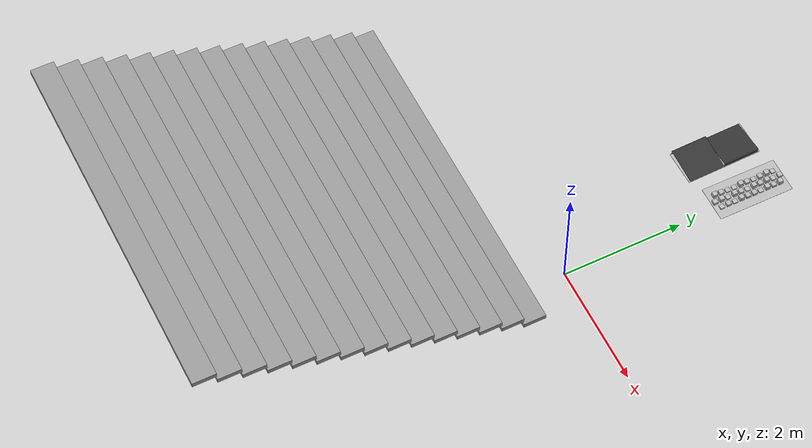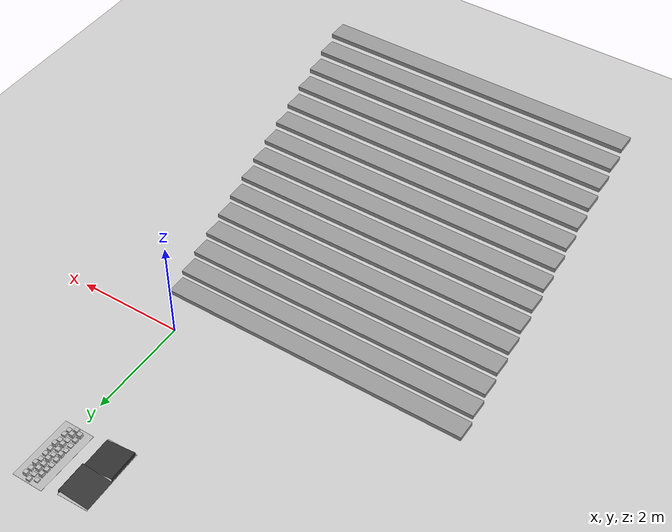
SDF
<sdf version="1.6">
 <world name="default">
  <light name="sun" type="directional">
   <pose>0 0 10 0 -0 0</pose>
   <diffuse>0.8 0.8 0.8 1</diffuse>
   <specular>0.2 0.2 0.2 1</specular>
   <attenuation>
    <range>1000</range>
    <constant>0.9</constant>
    <linear>0.01</linear>
    <quadratic>0.001</quadratic>
   </attenuation>
   <direction>-0.5 0.1 -0.9</direction>
  </light>
  <model name="ground_plane">
   <static>1</static>
   <link name="link">
    <collision name="collision">
     <geometry><plane><normal>0 0 1</normal><size>100 100</size></plane></geometry>
     <surface><friction><ode><mu>100</mu><mu2>50</mu2></ode></friction></surface>
    </collision>
    <visual name="visual">
     <cast_shadows>0</cast_shadows>
     <geometry><plane><normal>0 0 1</normal><size>100 100</size></plane></geometry>
     <material>
      <script><uri>file://media/materials/scripts/gazebo.material</uri><name>Gazebo/Grey</name></script>
     </material>
    </visual>
   </link>
  </model>
  <gravity>0 0 -9.8</gravity>
  <magnetic_field>6e-06 2.3e-05 -4.2e-05</magnetic_field>
  <atmosphere type="adiabatic"/>
  <physics name="default_physics" default="0" type="ode">
   <max_step_size>0.001</max_step_size>
   <real_time_factor>1</real_time_factor>
   <real_time_update_rate>1000</real_time_update_rate>
  </physics>
  <scene><ambient>0.4 0.4 0.4 1</ambient><background>0.7 0.7 0.7 1</background><shadows>1</shadows></scene>
  <spherical_coordinates>
   <surface_model>EARTH_WGS84</surface_model>
   <latitude_deg>0</latitude_deg>
   <longitude_deg>0</longitude_deg>
   <elevation>0</elevation>
   <heading_deg>0</heading_deg>
  </spherical_coordinates>
  <model name="stair_1">
   <pose>-2.39521 -3.42869 0 0 -0 0</pose>
   <link name="Stairs_0">
    <visual name="Stairs_0_Visual_0">
     <pose>-0 2.618 0.083333 0 -0 0</pose>
     <geometry><box><size>5.94 0.374 0.0833335</size></box></geometry>
     <material>
      <script><uri>file://media/materials/scripts/gazebo.material</uri><name>Gazebo/Grey</name></script>
      <ambient>1 1 1 1</ambient>
     </material>
     <meta><layer>0</layer></meta>
    </visual>
    <collision name="Stairs_0_Collision_0">
     <geometry><box><size>5.94 0.374 0.04</size></box></geometry>
     <pose>-0 2.618 0.083333 0 -0 0</pose>
    </collision>
    <visual name="Stairs_0_Visual_1">
     <pose>-0 2.244 0.25 0 -0 0</pose>
     <geometry><box><size>5.94 0.374 0.0833335</size></box></geometry>
     <material>
      <script><uri>file://media/materials/scripts/gazebo.material</uri><name>Gazebo/Grey</name></script>
      <ambient>1 1 1 1</ambient>
     </material>
     <meta><layer>0</layer></meta>
    </visual>
    <collision name="Stairs_0_Collision_1">
     <geometry><box><size>5.94 0.374 0.04</size></box></geometry>
     <pose>-0 2.244 0.16 0 -0 0</pose>
    </collision>
    <visual name="Stairs_0_Visual_2">
     <pose>-0 1.87 0.416667 0 -0 0</pose>
     <geometry><box><size>5.94 0.374 0.0833335</size></box></geometry>
     <material>
      <script><uri>file://media/materials/scripts/gazebo.material</uri><name>Gazebo/Grey</name></script>
      <ambient>1 1 1 1</ambient>
     </material>
     <meta><layer>0</layer></meta>
    </visual>
    <collision name="Stairs_0_Collision_2">
     <geometry><box><size>5.94 0.374 0.04</size></box></geometry>
     <pose>-0 1.87 0.24 0 -0 0</pose>
    </collision>
    <visual name="Stairs_0_Visual_3">
     <pose>-0 1.496 0.583333 0 -0 0</pose>
     <geometry><box><size>5.94 0.374 0.0833335</size></box></geometry>
     <material>
      <script><uri>file://media/materials/scripts/gazebo.material</uri><name>Gazebo/Grey</name></script>
      <ambient>1 1 1 1</ambient>
     </material>
     <meta><layer>0</layer></meta>
    </visual>
    <collision name="Stairs_0_Collision_3">
     <geometry><box><size>5.94 0.374 0.04</size></box></geometry>
     <pose>-0 1.496 0.32 0 -0 0</pose>
    </collision>
    <visual name="Stairs_0_Visual_4">
     <pose>-0 1.122 0.75 0 -0 0</pose>
     <geometry><box><size>5.94 0.374 0.0833335</size></box></geometry>
     <material>
      <script><uri>file://media/materials/scripts/gazebo.material</uri><name>Gazebo/Grey</name></script>
      <ambient>1 1 1 1</ambient>
     </material>
     <meta><layer>0</layer></meta>
    </visual>
    <collision name="Stairs_0_Collision_4">
     <geometry><box><size>5.94 0.374 0.04</size></box></geometry>
     <pose>-0 1.122 0.75 0 -0 0</pose>
    </collision>
    <visual name="Stairs_0_Visual_5">
     <pose>-0 0.748 0.916667 0 -0 0</pose>
     <geometry><box><size>5.94 0.374 0.0833335</size></box></geometry>
     <material>
      <script><uri>file://media/materials/scripts/gazebo.material</uri><name>Gazebo/Grey</name></script>
      <ambient>1 1 1 1</ambient>
     </material>
     <meta><layer>0</layer></meta>
    </visual>
    <collision name="Stairs_0_Collision_5">
     <geometry><box><size>5.94 0.374 0.04</size></box></geometry>
     <pose>-0 0.748 0.916667 0 -0 0</pose>
    </collision>
    <visual name="Stairs_0_Visual_6">
     <pose>-0 0.374 1.08333 0 -0 0</pose>
     <geometry><box><size>5.94 0.374 0.0833335</size></box></geometry>
     <material>
      <script><uri>file://media/materials/scripts/gazebo.material</uri><name>Gazebo/Grey</name></script>
      <ambient>1 1 1 1</ambient>
     </material>
     <meta><layer>0</layer></meta>
    </visual>
    <collision name="Stairs_0_Collision_6">
     <geometry><box><size>5.94 0.374 0.04</size></box></geometry>
     <pose>-0 0.374 1.08333 0 -0 0</pose>
    </collision>
    <visual name="Stairs_0_Visual_7">
     <pose>-0 0 1.25 0 -0 0</pose>
     <geometry><box><size>5.94 0.374 0.0833335</size></box></geometry>
     <material>
      <script><uri>file://media/materials/scripts/gazebo.material</uri><name>Gazebo/Grey</name></script>
      <ambient>1 1 1 1</ambient>
     </material>
     <meta><layer>0</layer></meta>
    </visual>
    <collision name="Stairs_0_Collision_7">
     <geometry><box><size>5.94 0.374 0.04</size></box></geometry>
     <pose>-0 0 1.25 0 -0 0</pose>
    </collision>
    <visual name="Stairs_0_Visual_8">
     <pose>-0 -0.374 1.41667 0 -0 0</pose>
     <geometry><box><size>5.94 0.374 0.0833335</size></box></geometry>
     <material>
      <script><uri>file://media/materials/scripts/gazebo.material</uri><name>Gazebo/Grey</name></script>
      <ambient>1 1 1 1</ambient>
     </material>
     <meta><layer>0</layer></meta>
    </visual>
    <collision name="Stairs_0_Collision_8">
     <geometry><box><size>5.94 0.374 0.0833335</size></box></geometry>
     <pose>-0 -0.374 1.41667 0 -0 0</pose>
    </collision>
    <visual name="Stairs_0_Visual_9">
     <pose>-0 -0.748 1.58333 0 -0 0</pose>
     <geometry><box><size>5.94 0.374 0.0833335</size></box></geometry>
     <material>
      <script><uri>file://media/materials/scripts/gazebo.material</uri><name>Gazebo/Grey</name></script>
      <ambient>1 1 1 1</ambient>
     </material>
     <meta><layer>0</layer></meta>
    </visual>
    <collision name="Stairs_0_Collision_9">
     <geometry><box><size>5.94 0.374 0.0833335</size></box></geometry>
     <pose>-0 -0.748 1.58333 0 -0 0</pose>
    </collision>
    <visual name="Stairs_0_Visual_10">
     <pose>-0 -1.122 1.75 0 -0 0</pose>
     <geometry><box><size>5.94 0.374 0.0833335</size></box></geometry>
     <material>
      <script><uri>file://media/materials/scripts/gazebo.material</uri><name>Gazebo/Grey</name></script>
      <ambient>1 1 1 1</ambient>
     </material>
     <meta><layer>0</layer></meta>
    </visual>
    <collision name="Stairs_0_Collision_10">
     <geometry><box><size>5.94 0.374 0.0833335</size></box></geometry>
     <pose>-0 -1.122 1.75 0 -0 0</pose>
    </collision>
    <visual name="Stairs_0_Visual_11">
     <pose>-0 -1.496 1.91667 0 -0 0</pose>
     <geometry><box><size>5.94 0.374 0.0833335</size></box></geometry>
     <material>
      <script><uri>file://media/materials/scripts/gazebo.material</uri><name>Gazebo/Grey</name></script>
      <ambient>1 1 1 1</ambient>
     </material>
     <meta><layer>0</layer></meta>
    </visual>
    <collision name="Stairs_0_Collision_11">
     <geometry><box><size>5.94 0.374 0.0833335</size></box></geometry>
     <pose>-0 -1.496 1.91667 0 -0 0</pose>
    </collision>
    <visual name="Stairs_0_Visual_12">
     <pose>-0 -1.87 2.08333 0 -0 0</pose>
     <geometry><box><size>5.94 0.374 0.0833335</size></box></geometry>
     <material>
      <script><uri>file://media/materials/scripts/gazebo.material</uri><name>Gazebo/Grey</name></script>
      <ambient>1 1 1 1</ambient>
     </material>
     <meta><layer>0</layer></meta>
    </visual>
    <collision name="Stairs_0_Collision_12">
     <geometry><box><size>5.94 0.374 0.0833335</size></box></geometry>
     <pose>-0 -1.87 2.08333 0 -0 0</pose>
    </collision>
    <visual name="Stairs_0_Visual_13">
     <pose>-0 -2.244 2.25 0 -0 0</pose>
     <geometry><box><size>5.94 0.374 0.0833335</size></box></geometry>
     <material>
      <script><uri>file://media/materials/scripts/gazebo.material</uri><name>Gazebo/Grey</name></script>
      <ambient>1 1 1 1</ambient>
     </material>
     <meta><layer>0</layer></meta>
    </visual>
    <collision name="Stairs_0_Collision_13">
     <geometry><box><size>5.94 0.374 0.0833335</size></box></geometry>
     <pose>-0 -2.244 2.25 0 -0 0</pose>
    </collision>
    <visual name="Stairs_0_Visual_14">
     <pose>-0 -2.618 2.41667 0 -0 0</pose>
     <geometry><box><size>5.94 0.374 0.0833335</size></box></geometry>
     <material>
      <script><uri>file://media/materials/scripts/gazebo.material</uri><name>Gazebo/Grey</name></script>
      <ambient>1 1 1 1</ambient>
     </material>
     <meta><layer>0</layer></meta>
    </visual>
    <collision name="Stairs_0_Collision_14">
     <geometry><box><size>5.94 0.374 0.0833335</size></box></geometry>
     <pose>-0 -2.618 2.41667 0 -0 0</pose>
    </collision>
   </link>
   <static>1</static>
  </model>
  <light name="user_directional_light_0" type="directional">
   <pose>2.75074 -8.65285 1 0 -0 0</pose>
   <diffuse>0.5 0.5 0.5 1</diffuse>
   <specular>0.1 0.1 0.1 1</specular>
   <direction>0.1 0.1 -0.9</direction>
   <attenuation>
    <range>20</range>
    <constant>0.5</constant>
    <linear>0.01</linear>
    <quadratic>0.001</quadratic>
   </attenuation>
  </light>
  <light name="user_directional_light_1" type="directional">
   <pose>2.23955 4.64441 1 0 -0 0</pose>
   <diffuse>0.5 0.5 0.5 1</diffuse>
   <specular>0.1 0.1 0.1 1</specular>
   <direction>0.1 0.1 -0.9</direction>
   <attenuation>
    <range>20</range>
    <constant>0.5</constant>
    <linear>0.01</linear>
    <quadratic>0.001</quadratic>
   </attenuation>
  </light>
  <light name="user_directional_light_2" type="directional">
   <pose>-1.77325 -5.81032 1 0 -0 0</pose>
   <diffuse>0.5 0.5 0.5 1</diffuse>
   <specular>0.1 0.1 0.1 1</specular>
   <direction>0.1 0.1 -0.9</direction>
   <attenuation>
    <range>20</range>
    <constant>0.5</constant>
    <linear>0.01</linear>
    <quadratic>0.001</quadratic>
   </attenuation>
  </light>
  <light name="user_directional_light_4" type="directional">
   <pose>18.9509 0.670094 1 0 -0 0</pose>
   <diffuse>0.5 0.5 0.5 1</diffuse>
   <specular>0.1 0.1 0.1 1</specular>
   <direction>0.1 0.1 -0.9</direction>
   <attenuation>
    <range>20</range>
    <constant>0.5</constant>
    <linear>0.01</linear>
    <quadratic>0.001</quadratic>
   </attenuation>
  </light>
  <light name="user_directional_light_6" type="directional">
   <pose>16.5202 1.66096 1 0 -0 0</pose>
   <diffuse>0.5 0.5 0.5 1</diffuse>
   <specular>0.1 0.1 0.1 1</specular>
   <direction>0.1 0.1 -0.9</direction>
   <attenuation>
    <range>20</range>
    <constant>0.5</constant>
    <linear>0.01</linear>
    <quadratic>0.001</quadratic>
   </attenuation>
  </light>
  <light name="user_directional_light_3" type="directional">
   <pose>-7.34768 2.60607 1 0 -0 0</pose>
   <diffuse>0.5 0.5 0.5 1</diffuse>
   <specular>0.1 0.1 0.1 1</specular>
   <direction>0.1 0.1 -0.9</direction>
   <attenuation>
    <range>20</range>
    <constant>0.5</constant>
    <linear>0.01</linear>
    <quadratic>0.001</quadratic>
   </attenuation>
  </light>
  <light name="user_directional_light_5" type="directional">
   <pose>-3.61693 7.43764 1 0 -0 0</pose>
   <diffuse>0.5 0.5 0.5 1</diffuse>
   <specular>0.1 0.1 0.1 1</specular>
   <direction>0.1 0.1 -0.9</direction>
   <attenuation>
    <range>20</range>
    <constant>0.5</constant>
    <linear>0.01</linear>
    <quadratic>0.001</quadratic>
   </attenuation>
  </light>
  <model name="frc2016_roughterrain">
   <static>1</static>
   <link name="link">
    <visual name="platform">
     <pose>0 0 0.08269 0 -0 0</pose>
     <geometry><box><size>1.27 0.5969 0.003175</size></box></geometry>
    </visual>
    <collision name="platform">
     <pose>0 0 0.08269 0 -0 0</pose>
     <geometry><box><size>1.27 0.5969 0.003175</size></box></geometry>
    </collision>
    <visual name="row1_block1_sm">
     <pose>0.51435 0.1143 0.09698 0 -0 0</pose>
     <geometry><box><size>0.0762 0.0762 0.0254</size></box></geometry>
    </visual>
    <collision name="row1_block1_sm">
     <pose>0.51435 0.1143 0.09698 0 -0 0</pose>
     <geometry><box><size>0.0762 0.0762 0.0254</size></box></geometry>
    </collision>
    <visual name="row1_block2_lg">
     <pose>0.40005 0.1143 0.12238 0 -0 0</pose>
     <geometry><box><size>0.0762 0.0762 0.0762</size></box></geometry>
    </visual>
    <collision name="row1_block2_lg">
     <pose>0.40005 0.1143 0.12238 0 -0 0</pose>
     <geometry><box><size>0.0762 0.0762 0.0762</size></box></geometry>
    </collision>
    <visual name="row1_block3_md">
     <pose>0.28575 0.1143 0.10968 0 -0 0</pose>
     <geometry><box><size>0.0762 0.0762 0.0508</size></box></geometry>
    </visual>
    <collision name="row1_block3_md">
     <pose>0.28575 0.1143 0.10968 0 -0 0</pose>
     <geometry><box><size>0.0762 0.0762 0.0508</size></box></geometry>
    </collision>
    <visual name="row1_block4_sm">
     <pose>0.17145 0.1143 0.09698 0 -0 0</pose>
     <geometry><box><size>0.0762 0.0762 0.0254</size></box></geometry>
    </visual>
    <collision name="row1_block4_sm">
     <pose>0.17145 0.1143 0.09698 0 -0 0</pose>
     <geometry><box><size>0.0762 0.0762 0.0254</size></box></geometry>
    </collision>
    <visual name="row1_block5_md">
     <pose>0.05715 0.1143 0.10968 0 -0 0</pose>
     <geometry><box><size>0.0762 0.0762 0.0508</size></box></geometry>
    </visual>
    <collision name="row1_block5_md">
     <pose>0.05715 0.1143 0.10968 0 -0 0</pose>
     <geometry><box><size>0.0762 0.0762 0.0508</size></box></geometry>
    </collision>
    <visual name="row1_block6_lg">
     <pose>-0.05715 0.1143 0.12238 0 -0 0</pose>
     <geometry><box><size>0.0762 0.0762 0.0762</size></box></geometry>
    </visual>
    <collision name="row1_block6_lg">
     <pose>-0.05715 0.1143 0.12238 0 -0 0</pose>
     <geometry><box><size>0.0762 0.0762 0.0762</size></box></geometry>
    </collision>
    <visual name="row1_block7_sm">
     <pose>-0.17145 0.1143 0.09698 0 -0 0</pose>
     <geometry><box><size>0.0762 0.0762 0.0254</size></box></geometry>
    </visual>
    <collision name="row1_block7_sm">
     <pose>-0.17145 0.1143 0.09698 0 -0 0</pose>
     <geometry><box><size>0.0762 0.0762 0.0254</size></box></geometry>
    </collision>
    <visual name="row1_block8_sm">
     <pose>-0.28575 0.1143 0.09698 0 -0 0</pose>
     <geometry><box><size>0.0762 0.0762 0.0254</size></box></geometry>
    </visual>
    <collision name="row1_block8_sm">
     <pose>-0.28575 0.1143 0.09698 0 -0 0</pose>
     <geometry><box><size>0.0762 0.0762 0.0254</size></box></geometry>
    </collision>
    <visual name="row1_block9_md">
     <pose>-0.40005 0.1143 0.10968 0 -0 0</pose>
     <geometry><box><size>0.0762 0.0762 0.0508</size></box></geometry>
    </visual>
    <collision name="row1_block9_md">
     <pose>-0.40005 0.1143 0.10968 0 -0 0</pose>
     <geometry><box><size>0.0762 0.0762 0.0508</size></box></geometry>
    </collision>
    <visual name="row1_block10_lg">
     <pose>-0.51435 0.1143 0.12238 0 -0 0</pose>
     <geometry><box><size>0.0762 0.0762 0.0762</size></box></geometry>
    </visual>
    <collision name="row1_block10_lg">
     <pose>-0.51435 0.1143 0.12238 0 -0 0</pose>
     <geometry><box><size>0.0762 0.0762 0.0762</size></box></geometry>
    </collision>
    <visual name="row2_block1_md">
     <pose>0.5715 0 0.10968 0 -0 0</pose>
     <geometry><box><size>0.0762 0.0762 0.0508</size></box></geometry>
    </visual>
    <collision name="row2_block1_md">
     <pose>0.5715 0 0.10968 0 -0 0</pose>
     <geometry><box><size>0.0762 0.0762 0.0508</size></box></geometry>
    </collision>
    <visual name="row2_block2_sm">
     <pose>0.4572 0 0.09698 0 -0 0</pose>
     <geometry><box><size>0.0762 0.0762 0.0254</size></box></geometry>
    </visual>
    <collision name="row2_block2_sm">
     <pose>0.4572 0 0.09698 0 -0 0</pose>
     <geometry><box><size>0.0762 0.0762 0.0254</size></box></geometry>
    </collision>
    <visual name="row2_block3_lg">
     <pose>0.3429 0 0.12238 0 -0 0</pose>
     <geometry><box><size>0.0762 0.0762 0.0762</size></box></geometry>
    </visual>
    <collision name="row2_block3_lg">
     <pose>0.3429 0 0.12238 0 -0 0</pose>
     <geometry><box><size>0.0762 0.0762 0.0762</size></box></geometry>
    </collision>
    <visual name="row2_block4_md">
     <pose>0.2286 0 0.10968 0 -0 0</pose>
     <geometry><box><size>0.0762 0.0762 0.0508</size></box></geometry>
    </visual>
    <collision name="row2_block4_md">
     <pose>0.2286 0 0.10968 0 -0 0</pose>
     <geometry><box><size>0.0762 0.0762 0.0508</size></box></geometry>
    </collision>
    <visual name="row2_block5_lg">
     <pose>0.1143 0 0.12238 0 -0 0</pose>
     <geometry><box><size>0.0762 0.0762 0.0762</size></box></geometry>
    </visual>
    <collision name="row2_block5_lg">
     <pose>0.1143 0 0.12238 0 -0 0</pose>
     <geometry><box><size>0.0762 0.0762 0.0762</size></box></geometry>
    </collision>
    <visual name="row2_block6_sm">
     <pose>0 0 0.09698 0 -0 0</pose>
     <geometry><box><size>0.0762 0.0762 0.0254</size></box></geometry>
    </visual>
    <collision name="row2_block6_sm">
     <pose>0 0 0.09698 0 -0 0</pose>
     <geometry><box><size>0.0762 0.0762 0.0254</size></box></geometry>
    </collision>
    <visual name="row2_block7_md">
     <pose>-0.1143 0 0.10968 0 -0 0</pose>
     <geometry><box><size>0.0762 0.0762 0.0508</size></box></geometry>
    </visual>
    <collision name="row2_block7_md">
     <pose>-0.1143 0 0.10968 0 -0 0</pose>
     <geometry><box><size>0.0762 0.0762 0.0508</size></box></geometry>
    </collision>
    <visual name="row2_block8_lg">
     <pose>-0.2286 0 0.12238 0 -0 0</pose>
     <geometry><box><size>0.0762 0.0762 0.0762</size></box></geometry>
    </visual>
    <collision name="row2_block8_lg">
     <pose>-0.2286 0 0.12238 0 -0 0</pose>
     <geometry><box><size>0.0762 0.0762 0.0762</size></box></geometry>
    </collision>
    <visual name="row2_block9_sm">
     <pose>-0.3429 0 0.09698 0 -0 0</pose>
     <geometry><box><size>0.0762 0.0762 0.0254</size></box></geometry>
    </visual>
    <collision name="row2_block9_sm">
     <pose>-0.3429 0 0.09698 0 -0 0</pose>
     <geometry><box><size>0.0762 0.0762 0.0254</size></box></geometry>
    </collision>
    <visual name="row2_block10_lg">
     <pose>-0.4572 0 0.12238 0 -0 0</pose>
     <geometry><box><size>0.0762 0.0762 0.0762</size></box></geometry>
    </visual>
    <collision name="row2_block10_lg">
     <pose>-0.4572 0 0.12238 0 -0 0</pose>
     <geometry><box><size>0.0762 0.0762 0.0762</size></box></geometry>
    </collision>
    <visual name="row2_block11_md">
     <pose>-0.5715 0 0.10968 0 -0 0</pose>
     <geometry><box><size>0.0762 0.0762 0.0508</size></box></geometry>
    </visual>
    <collision name="row2_block11_md">
     <pose>-0.5715 0 0.10968 0 -0 0</pose>
     <geometry><box><size>0.0762 0.0762 0.0508</size></box></geometry>
    </collision>
    <visual name="row3_block1_lg">
     <pose>0.51435 -0.1143 0.12238 0 -0 0</pose>
     <geometry><box><size>0.0762 0.0762 0.0762</size></box></geometry>
    </visual>
    <collision name="row3_block1_lg">
     <pose>0.51435 -0.1143 0.12238 0 -0 0</pose>
     <geometry><box><size>0.0762 0.0762 0.0762</size></box></geometry>
    </collision>
    <visual name="row3_block2_md">
     <pose>0.40005 -0.1143 0.10968 0 -0 0</pose>
     <geometry><box><size>0.0762 0.0762 0.0508</size></box></geometry>
    </visual>
    <collision name="row3_block2_md">
     <pose>0.40005 -0.1143 0.10968 0 -0 0</pose>
     <geometry><box><size>0.0762 0.0762 0.0508</size></box></geometry>
    </collision>
    <visual name="row3_block3_lg">
     <pose>0.28575 -0.1143 0.12238 0 -0 0</pose>
     <geometry><box><size>0.0762 0.0762 0.0762</size></box></geometry>
    </visual>
    <collision name="row3_block3_lg">
     <pose>0.28575 -0.1143 0.12238 0 -0 0</pose>
     <geometry><box><size>0.0762 0.0762 0.0762</size></box></geometry>
    </collision>
    <visual name="row3_block4_sm">
     <pose>0.17145 -0.1143 0.09698 0 -0 0</pose>
     <geometry><box><size>0.0762 0.0762 0.0254</size></box></geometry>
    </visual>
    <collision name="row3_block4_sm">
     <pose>0.17145 -0.1143 0.09698 0 -0 0</pose>
     <geometry><box><size>0.0762 0.0762 0.0254</size></box></geometry>
    </collision>
    <visual name="row3_block5_md">
     <pose>0.05715 -0.1143 0.10968 0 -0 0</pose>
     <geometry><box><size>0.0762 0.0762 0.0508</size></box></geometry>
    </visual>
    <collision name="row3_block5_md">
     <pose>0.05715 -0.1143 0.10968 0 -0 0</pose>
     <geometry><box><size>0.0762 0.0762 0.0508</size></box></geometry>
    </collision>
    <visual name="row3_block6_md">
     <pose>-0.05715 -0.1143 0.10968 0 -0 0</pose>
     <geometry><box><size>0.0762 0.0762 0.0508</size></box></geometry>
    </visual>
    <collision name="row3_block6_md">
     <pose>-0.05715 -0.1143 0.10968 0 -0 0</pose>
     <geometry><box><size>0.0762 0.0762 0.0508</size></box></geometry>
    </collision>
    <visual name="row3_block7_lg">
     <pose>-0.17145 -0.1143 0.12238 0 -0 0</pose>
     <geometry><box><size>0.0762 0.0762 0.0762</size></box></geometry>
    </visual>
    <collision name="row3_block7_lg">
     <pose>-0.17145 -0.1143 0.12238 0 -0 0</pose>
     <geometry><box><size>0.0762 0.0762 0.0762</size></box></geometry>
    </collision>
    <visual name="row3_block8_sm">
     <pose>-0.28575 -0.1143 0.09698 0 -0 0</pose>
     <geometry><box><size>0.0762 0.0762 0.0254</size></box></geometry>
    </visual>
    <collision name="row3_block8_sm">
     <pose>-0.28575 -0.1143 0.09698 0 -0 0</pose>
     <geometry><box><size>0.0762 0.0762 0.0254</size></box></geometry>
    </collision>
    <visual name="row3_block9_md">
     <pose>-0.40005 -0.1143 0.10968 0 -0 0</pose>
     <geometry><box><size>0.0762 0.0762 0.0508</size></box></geometry>
    </visual>
    <collision name="row3_block9_md">
     <pose>-0.40005 -0.1143 0.10968 0 -0 0</pose>
     <geometry><box><size>0.0762 0.0762 0.0508</size></box></geometry>
    </collision>
    <visual name="row3_block10_sm">
     <pose>-0.51435 -0.1143 0.09698 0 -0 0</pose>
     <geometry><box><size>0.0762 0.0762 0.0254</size></box></geometry>
    </visual>
    <collision name="row3_block10_sm">
     <pose>-0.51435 -0.1143 0.09698 0 -0 0</pose>
     <geometry><box><size>0.0762 0.0762 0.0254</size></box></geometry>
    </collision>
   </link>
   <pose>-0.065267 3.22966 0 0 -0 1.5663</pose>
  </model>
  <model name="frc2016_ramparts">
   <static>1</static>
   <link name="link">
    <visual name="platform">
     <pose>0 0 0.06967 0 -0 0</pose>
     <geometry><box><size>1.27 0.5969 0.003175</size></box></geometry>
    </visual>
    <collision name="platform">
     <pose>0 0 0.06967 0 -0 0</pose>
     <geometry><box><size>1.27 0.5969 0.003175</size></box></geometry>
    </collision>
    <visual name="ramp1">
     <pose>0.30472 0.00588 0.1109 -0.13 0 0</pose>
     <geometry><box><size>0.60957 0.588891 0.00462</size></box></geometry>
     <material><ambient>0.2 0.2 0.2 1</ambient><diffuse>0.2 0.2 0.2 1</diffuse></material>
    </visual>
    <collision name="ramp1">
     <pose>0.30472 0.00588 0.1109 -0.13 0 0</pose>
     <geometry><box><size>0.60957 0.588891 0.00462</size></box></geometry>
    </collision>
    <visual name="up1">
     <pose>0.30472 -0.28806 0.11072 0 -0 0</pose>
     <geometry><box><size>0.60957 0.00462 0.07872</size></box></geometry>
     <material><ambient>0.2 0.2 0.2 1</ambient><diffuse>0.2 0.2 0.2 1</diffuse></material>
    </visual>
    <collision name="up1">
     <pose>0.30472 -0.28806 0.11072 0 -0 0</pose>
     <geometry><box><size>0.60957 0.00462 0.07872</size></box></geometry>
    </collision>
    <visual name="ramp2">
     <pose>-0.30472 -0.00619 0.1109 0.13 -0 0</pose>
     <geometry><box><size>0.60957 0.588891 0.00462</size></box></geometry>
     <material><ambient>0.2 0.2 0.2 1</ambient><diffuse>0.2 0.2 0.2 1</diffuse></material>
    </visual>
    <collision name="ramp2">
     <pose>-0.30472 -0.00619 0.1109 0.13 -0 0</pose>
     <geometry><box><size>0.60957 0.588891 0.00462</size></box></geometry>
    </collision>
    <visual name="up2">
     <pose>-0.30472 0.28806 0.11072 0 -0 0</pose>
     <geometry><box><size>0.60957 0.00462 0.07872</size></box></geometry>
     <material><ambient>0.2 0.2 0.2 1</ambient><diffuse>0.2 0.2 0.2 1</diffuse></material>
    </visual>
    <collision name="up2">
     <pose>-0.30472 0.28806 0.11072 0 -0 0</pose>
     <geometry><box><size>0.60957 0.00462 0.07872</size></box></geometry>
    </collision>
   </link>
   <pose>-0.888292 3.12395 0 0 0 -1.55139</pose>
  </model>
 </world>
</sdf>
